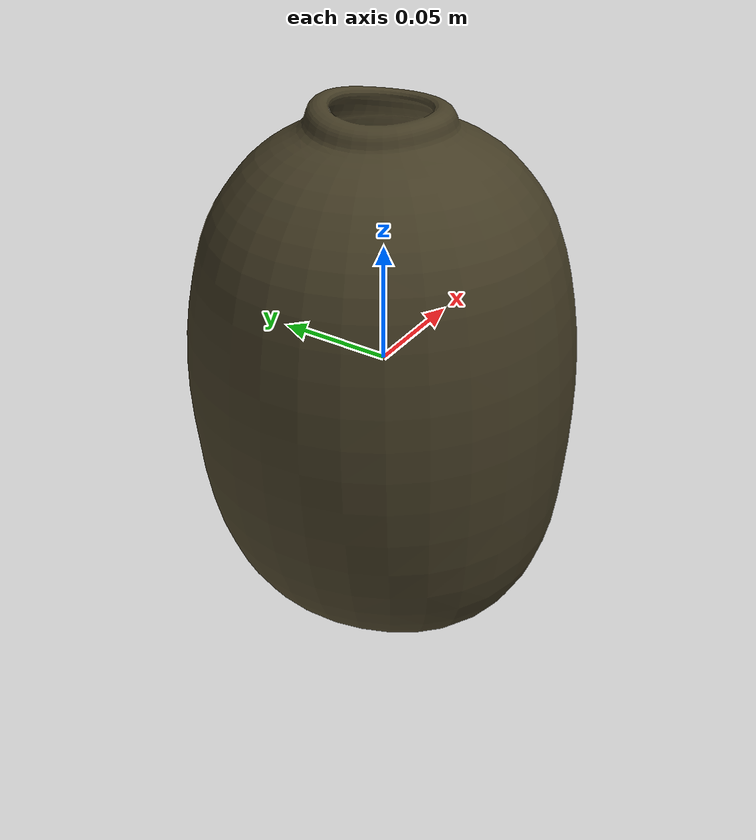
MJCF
<?xml version="1.0" ?>
<mujoco model="yellow_vase">
	<compiler meshdir="yellow_vase/meshes" texturedir="yellow_vase/textures" angle="radian" autolimits="true" balanceinertia="true" boundmass="0.000001" boundinertia="0.000001"/>
	<default>
		<default class="visual">
			<geom contype="0" conaffinity="0"/>
		</default>
		<default class="collision">
			<geom rgba="1.0 0.0 0.0 0.0"/>
		</default>
	</default>
	<asset>
		<mesh name="YellowVase" file="stl/YellowVase.stl" scale="1.0 1.0 1.0"/>
		<mesh name="YellowVase_001" file="stl/YellowVase_001.stl" scale="1.0 1.0 1.0"/>
		<mesh name="YellowVase_002" file="stl/YellowVase_002.stl" scale="1.0 1.0 1.0"/>
		<mesh name="YellowVase_003" file="stl/YellowVase_003.stl" scale="1.0 1.0 1.0"/>
		<mesh name="YellowVase_004" file="stl/YellowVase_004.stl" scale="1.0 1.0 1.0"/>
		<mesh name="YellowVase_005" file="stl/YellowVase_005.stl" scale="1.0 1.0 1.0"/>
		<mesh name="YellowVase_006" file="stl/YellowVase_006.stl" scale="1.0 1.0 1.0"/>
		<mesh name="YellowVase_007" file="stl/YellowVase_007.stl" scale="1.0 1.0 1.0"/>
		<mesh name="YellowVase_008" file="stl/YellowVase_008.stl" scale="1.0 1.0 1.0"/>
		<mesh name="YellowVase_009" file="stl/YellowVase_009.stl" scale="1.0 1.0 1.0"/>
		<mesh name="YellowVase_010" file="stl/YellowVase_010.stl" scale="1.0 1.0 1.0"/>
		<mesh name="YellowVase_011" file="stl/YellowVase_011.stl" scale="1.0 1.0 1.0"/>
		<mesh name="YellowVase_012" file="stl/YellowVase_012.stl" scale="1.0 1.0 1.0"/>
		<mesh name="YellowVase_013" file="stl/YellowVase_013.stl" scale="1.0 1.0 1.0"/>
		<mesh name="YellowVase_014" file="stl/YellowVase_014.stl" scale="1.0 1.0 1.0"/>
		<mesh name="YellowVase_015" file="stl/YellowVase_015.stl" scale="1.0 1.0 1.0"/>
		<mesh name="YellowVase_016" file="stl/YellowVase_016.stl" scale="1.0 1.0 1.0"/>
		<mesh name="YellowVase_017" file="stl/YellowVase_017.stl" scale="1.0 1.0 1.0"/>
		<mesh name="YellowVase_018" file="stl/YellowVase_018.stl" scale="1.0 1.0 1.0"/>
		<mesh name="YellowVase_019" file="stl/YellowVase_019.stl" scale="1.0 1.0 1.0"/>
		<mesh name="YellowVase_020" file="stl/YellowVase_020.stl" scale="1.0 1.0 1.0"/>
		<mesh name="YellowVase_021" file="stl/YellowVase_021.stl" scale="1.0 1.0 1.0"/>
		<mesh name="YellowVase_022" file="stl/YellowVase_022.stl" scale="1.0 1.0 1.0"/>
		<mesh name="YellowVase_023" file="stl/YellowVase_023.stl" scale="1.0 1.0 1.0"/>
		<mesh name="YellowVase_024" file="stl/YellowVase_024.stl" scale="1.0 1.0 1.0"/>
		<mesh name="YellowVase_025" file="stl/YellowVase_025.stl" scale="1.0 1.0 1.0"/>
		<mesh name="YellowVase_026" file="stl/YellowVase_026.stl" scale="1.0 1.0 1.0"/>
		<mesh name="YellowVase_027" file="stl/YellowVase_027.stl" scale="1.0 1.0 1.0"/>
		<mesh name="YellowVase_028" file="stl/YellowVase_028.stl" scale="1.0 1.0 1.0"/>
		<mesh name="YellowVase_029" file="stl/YellowVase_029.stl" scale="1.0 1.0 1.0"/>
		<mesh name="YellowVase_030" file="stl/YellowVase_030.stl" scale="1.0 1.0 1.0"/>
		<mesh name="YellowVase_031" file="stl/YellowVase_031.stl" scale="1.0 1.0 1.0"/>
		<mesh name="YellowVase_032" file="stl/YellowVase_032.stl" scale="1.0 1.0 1.0"/>
		<mesh name="YellowVase_033" file="stl/YellowVase_033.stl" scale="1.0 1.0 1.0"/>
		<mesh name="YellowVase_034" file="stl/YellowVase_034.stl" scale="1.0 1.0 1.0"/>
		<mesh name="YellowVase_035" file="stl/YellowVase_035.stl" scale="1.0 1.0 1.0"/>
		<mesh name="YellowVase_036" file="stl/YellowVase_036.stl" scale="1.0 1.0 1.0"/>
		<mesh name="YellowVase_037" file="stl/YellowVase_037.stl" scale="1.0 1.0 1.0"/>
		<mesh name="YellowVase_038" file="stl/YellowVase_038.stl" scale="1.0 1.0 1.0"/>
		<mesh name="YellowVase_039" file="stl/YellowVase_039.stl" scale="1.0 1.0 1.0"/>
		<mesh name="YellowVase_040" file="stl/YellowVase_040.stl" scale="1.0 1.0 1.0"/>
		<mesh name="YellowVase_041" file="stl/YellowVase_041.stl" scale="1.0 1.0 1.0"/>
		<mesh name="YellowVase_042" file="stl/YellowVase_042.stl" scale="1.0 1.0 1.0"/>
		<mesh name="YellowVase_043" file="stl/YellowVase_043.stl" scale="1.0 1.0 1.0"/>
		<mesh name="YellowVase_044" file="stl/YellowVase_044.stl" scale="1.0 1.0 1.0"/>
		<mesh name="YellowVase_045" file="stl/YellowVase_045.stl" scale="1.0 1.0 1.0"/>
		<mesh name="YellowVase_046" file="stl/YellowVase_046.stl" scale="1.0 1.0 1.0"/>
		<mesh name="YellowVase_047" file="stl/YellowVase_047.stl" scale="1.0 1.0 1.0"/>
		<mesh name="YellowVase_048" file="stl/YellowVase_048.stl" scale="1.0 1.0 1.0"/>
		<mesh name="YellowVase_049" file="stl/YellowVase_049.stl" scale="1.0 1.0 1.0"/>
		<mesh name="YellowVase_050" file="stl/YellowVase_050.stl" scale="1.0 1.0 1.0"/>
		<mesh name="YellowVase_051" file="stl/YellowVase_051.stl" scale="1.0 1.0 1.0"/>
		<mesh name="YellowVase_052" file="stl/YellowVase_052.stl" scale="1.0 1.0 1.0"/>
		<mesh name="YellowVase_053" file="stl/YellowVase_053.stl" scale="1.0 1.0 1.0"/>
		<mesh name="YellowVase_054" file="stl/YellowVase_054.stl" scale="1.0 1.0 1.0"/>
		<mesh name="YellowVase_055" file="stl/YellowVase_055.stl" scale="1.0 1.0 1.0"/>
		<mesh name="YellowVase_056" file="stl/YellowVase_056.stl" scale="1.0 1.0 1.0"/>
		<mesh name="YellowVase_057" file="stl/YellowVase_057.stl" scale="1.0 1.0 1.0"/>
		<mesh name="YellowVase_058" file="stl/YellowVase_058.stl" scale="1.0 1.0 1.0"/>
		<mesh name="YellowVase_059" file="stl/YellowVase_059.stl" scale="1.0 1.0 1.0"/>
		<mesh name="YellowVase_060" file="stl/YellowVase_060.stl" scale="1.0 1.0 1.0"/>
		<mesh name="YellowVase_061" file="stl/YellowVase_061.stl" scale="1.0 1.0 1.0"/>
		<mesh name="YellowVase_062" file="stl/YellowVase_062.stl" scale="1.0 1.0 1.0"/>
		<mesh name="YellowVase_063" file="stl/YellowVase_063.stl" scale="1.0 1.0 1.0"/>
		<mesh name="YellowVase_064" file="stl/YellowVase_064.stl" scale="1.0 1.0 1.0"/>
		<mesh name="YellowVase_065" file="stl/YellowVase_065.stl" scale="1.0 1.0 1.0"/>
		<mesh name="YellowVase_066" file="stl/YellowVase_066.stl" scale="1.0 1.0 1.0"/>
		<mesh name="YellowVase_067" file="stl/YellowVase_067.stl" scale="1.0 1.0 1.0"/>
		<mesh name="YellowVase_068" file="stl/YellowVase_068.stl" scale="1.0 1.0 1.0"/>
		<mesh name="YellowVase_069" file="stl/YellowVase_069.stl" scale="1.0 1.0 1.0"/>
		<mesh name="YellowVase_070" file="stl/YellowVase_070.stl" scale="1.0 1.0 1.0"/>
		<mesh name="YellowVase_071" file="stl/YellowVase_071.stl" scale="1.0 1.0 1.0"/>
		<mesh name="YellowVase_072" file="stl/YellowVase_072.stl" scale="1.0 1.0 1.0"/>
		<mesh name="YellowVase_073" file="stl/YellowVase_073.stl" scale="1.0 1.0 1.0"/>
		<mesh name="YellowVase_074" file="stl/YellowVase_074.stl" scale="1.0 1.0 1.0"/>
		<mesh name="YellowVase_075" file="stl/YellowVase_075.stl" scale="1.0 1.0 1.0"/>
		<mesh name="YellowVase_076" file="stl/YellowVase_076.stl" scale="1.0 1.0 1.0"/>
		<mesh name="YellowVase_077" file="stl/YellowVase_077.stl" scale="1.0 1.0 1.0"/>
		<mesh name="YellowVase_078" file="stl/YellowVase_078.stl" scale="1.0 1.0 1.0"/>
		<mesh name="YellowVase_079" file="stl/YellowVase_079.stl" scale="1.0 1.0 1.0"/>
		<mesh name="YellowVase_080" file="stl/YellowVase_080.stl" scale="1.0 1.0 1.0"/>
		<mesh name="YellowVase_081" file="stl/YellowVase_081.stl" scale="1.0 1.0 1.0"/>
		<mesh name="YellowVase_082" file="stl/YellowVase_082.stl" scale="1.0 1.0 1.0"/>
		<mesh name="YellowVase_083" file="stl/YellowVase_083.stl" scale="1.0 1.0 1.0"/>
		<mesh name="YellowVase_084" file="stl/YellowVase_084.stl" scale="1.0 1.0 1.0"/>
		<mesh name="YellowVase_085" file="stl/YellowVase_085.stl" scale="1.0 1.0 1.0"/>
		<mesh name="YellowVase_086" file="stl/YellowVase_086.stl" scale="1.0 1.0 1.0"/>
		<mesh name="YellowVase_087" file="stl/YellowVase_087.stl" scale="1.0 1.0 1.0"/>
		<mesh name="YellowVase_088" file="stl/YellowVase_088.stl" scale="1.0 1.0 1.0"/>
		<mesh name="YellowVase_089" file="stl/YellowVase_089.stl" scale="1.0 1.0 1.0"/>
		<mesh name="YellowVase_090" file="stl/YellowVase_090.stl" scale="1.0 1.0 1.0"/>
		<material name="M_YellowVase" rgba="0.26980000734329224 0.23919999599456787 0.1467999964952469 1.0" emission="0.0"/>
	</asset>
	<worldbody>
		<body name="yellow_vase" pos="0.0 0.0 0.0" quat="1.0 0.0 0.0 0.0">
			<inertial mass="1.7265357971191406" pos="0.0003741401305887848 -0.007447044365108013 -0.036509908735752106" quat="-0.6950965523719788 0.03205767646431923 0.7181177139282227 0.010957551188766956" diaginertia="0.006521994713693857 0.012012211605906487 0.012103862129151821"/>
			<geom name="YellowVase" type="mesh" pos="0.0 0.0 0.0" quat="1.0 0.0 0.0 0.0" mesh="YellowVase" material="M_YellowVase" class="visual"/>
			<geom name="YellowVase_001" type="mesh" pos="0.0 0.0 0.0" quat="1.0 0.0 0.0 0.0" mesh="YellowVase_001" class="collision"/>
			<geom name="YellowVase_002" type="mesh" pos="0.0 0.0 0.0" quat="1.0 0.0 0.0 0.0" mesh="YellowVase_002" class="collision"/>
			<geom name="YellowVase_003" type="mesh" pos="0.0 0.0 0.0" quat="1.0 0.0 0.0 0.0" mesh="YellowVase_003" class="collision"/>
			<geom name="YellowVase_004" type="mesh" pos="0.0 0.0 0.0" quat="1.0 0.0 0.0 0.0" mesh="YellowVase_004" class="collision"/>
			<geom name="YellowVase_005" type="mesh" pos="0.0 0.0 0.0" quat="1.0 0.0 0.0 0.0" mesh="YellowVase_005" class="collision"/>
			<geom name="YellowVase_006" type="mesh" pos="0.0 0.0 0.0" quat="1.0 0.0 0.0 0.0" mesh="YellowVase_006" class="collision"/>
			<geom name="YellowVase_007" type="mesh" pos="0.0 0.0 0.0" quat="1.0 0.0 0.0 0.0" mesh="YellowVase_007" class="collision"/>
			<geom name="YellowVase_008" type="mesh" pos="0.0 0.0 0.0" quat="1.0 0.0 0.0 0.0" mesh="YellowVase_008" class="collision"/>
			<geom name="YellowVase_009" type="mesh" pos="0.0 0.0 0.0" quat="1.0 0.0 0.0 0.0" mesh="YellowVase_009" class="collision"/>
			<geom name="YellowVase_010" type="mesh" pos="0.0 0.0 0.0" quat="1.0 0.0 0.0 0.0" mesh="YellowVase_010" class="collision"/>
			<geom name="YellowVase_011" type="mesh" pos="0.0 0.0 0.0" quat="1.0 0.0 0.0 0.0" mesh="YellowVase_011" class="collision"/>
			<geom name="YellowVase_012" type="mesh" pos="0.0 0.0 0.0" quat="1.0 0.0 0.0 0.0" mesh="YellowVase_012" class="collision"/>
			<geom name="YellowVase_013" type="mesh" pos="0.0 0.0 0.0" quat="1.0 0.0 0.0 0.0" mesh="YellowVase_013" class="collision"/>
			<geom name="YellowVase_014" type="mesh" pos="0.0 0.0 0.0" quat="1.0 0.0 0.0 0.0" mesh="YellowVase_014" class="collision"/>
			<geom name="YellowVase_015" type="mesh" pos="0.0 0.0 0.0" quat="1.0 0.0 0.0 0.0" mesh="YellowVase_015" class="collision"/>
			<geom name="YellowVase_016" type="mesh" pos="0.0 0.0 0.0" quat="1.0 0.0 0.0 0.0" mesh="YellowVase_016" class="collision"/>
			<geom name="YellowVase_017" type="mesh" pos="0.0 0.0 0.0" quat="1.0 0.0 0.0 0.0" mesh="YellowVase_017" class="collision"/>
			<geom name="YellowVase_018" type="mesh" pos="0.0 0.0 0.0" quat="1.0 0.0 0.0 0.0" mesh="YellowVase_018" class="collision"/>
			<geom name="YellowVase_019" type="mesh" pos="0.0 0.0 0.0" quat="1.0 0.0 0.0 0.0" mesh="YellowVase_019" class="collision"/>
			<geom name="YellowVase_020" type="mesh" pos="0.0 0.0 0.0" quat="1.0 0.0 0.0 0.0" mesh="YellowVase_020" class="collision"/>
			<geom name="YellowVase_021" type="mesh" pos="0.0 0.0 0.0" quat="1.0 0.0 0.0 0.0" mesh="YellowVase_021" class="collision"/>
			<geom name="YellowVase_022" type="mesh" pos="0.0 0.0 0.0" quat="1.0 0.0 0.0 0.0" mesh="YellowVase_022" class="collision"/>
			<geom name="YellowVase_023" type="mesh" pos="0.0 0.0 0.0" quat="1.0 0.0 0.0 0.0" mesh="YellowVase_023" class="collision"/>
			<geom name="YellowVase_024" type="mesh" pos="0.0 0.0 0.0" quat="1.0 0.0 0.0 0.0" mesh="YellowVase_024" class="collision"/>
			<geom name="YellowVase_025" type="mesh" pos="0.0 0.0 0.0" quat="1.0 0.0 0.0 0.0" mesh="YellowVase_025" class="collision"/>
			<geom name="YellowVase_026" type="mesh" pos="0.0 0.0 0.0" quat="1.0 0.0 0.0 0.0" mesh="YellowVase_026" class="collision"/>
			<geom name="YellowVase_027" type="mesh" pos="0.0 0.0 0.0" quat="1.0 0.0 0.0 0.0" mesh="YellowVase_027" class="collision"/>
			<geom name="YellowVase_028" type="mesh" pos="0.0 0.0 0.0" quat="1.0 0.0 0.0 0.0" mesh="YellowVase_028" class="collision"/>
			<geom name="YellowVase_029" type="mesh" pos="0.0 0.0 0.0" quat="1.0 0.0 0.0 0.0" mesh="YellowVase_029" class="collision"/>
			<geom name="YellowVase_030" type="mesh" pos="0.0 0.0 0.0" quat="1.0 0.0 0.0 0.0" mesh="YellowVase_030" class="collision"/>
			<geom name="YellowVase_031" type="mesh" pos="0.0 0.0 0.0" quat="1.0 0.0 0.0 0.0" mesh="YellowVase_031" class="collision"/>
			<geom name="YellowVase_032" type="mesh" pos="0.0 0.0 0.0" quat="1.0 0.0 0.0 0.0" mesh="YellowVase_032" class="collision"/>
			<geom name="YellowVase_033" type="mesh" pos="0.0 0.0 0.0" quat="1.0 0.0 0.0 0.0" mesh="YellowVase_033" class="collision"/>
			<geom name="YellowVase_034" type="mesh" pos="0.0 0.0 0.0" quat="1.0 0.0 0.0 0.0" mesh="YellowVase_034" class="collision"/>
			<geom name="YellowVase_035" type="mesh" pos="0.0 0.0 0.0" quat="1.0 0.0 0.0 0.0" mesh="YellowVase_035" class="collision"/>
			<geom name="YellowVase_036" type="mesh" pos="0.0 0.0 0.0" quat="1.0 0.0 0.0 0.0" mesh="YellowVase_036" class="collision"/>
			<geom name="YellowVase_037" type="mesh" pos="0.0 0.0 0.0" quat="1.0 0.0 0.0 0.0" mesh="YellowVase_037" class="collision"/>
			<geom name="YellowVase_038" type="mesh" pos="0.0 0.0 0.0" quat="1.0 0.0 0.0 0.0" mesh="YellowVase_038" class="collision"/>
			<geom name="YellowVase_039" type="mesh" pos="0.0 0.0 0.0" quat="1.0 0.0 0.0 0.0" mesh="YellowVase_039" class="collision"/>
			<geom name="YellowVase_040" type="mesh" pos="0.0 0.0 0.0" quat="1.0 0.0 0.0 0.0" mesh="YellowVase_040" class="collision"/>
			<geom name="YellowVase_041" type="mesh" pos="0.0 0.0 0.0" quat="1.0 0.0 0.0 0.0" mesh="YellowVase_041" class="collision"/>
			<geom name="YellowVase_042" type="mesh" pos="0.0 0.0 0.0" quat="1.0 0.0 0.0 0.0" mesh="YellowVase_042" class="collision"/>
			<geom name="YellowVase_043" type="mesh" pos="0.0 0.0 0.0" quat="1.0 0.0 0.0 0.0" mesh="YellowVase_043" class="collision"/>
			<geom name="YellowVase_044" type="mesh" pos="0.0 0.0 0.0" quat="1.0 0.0 0.0 0.0" mesh="YellowVase_044" class="collision"/>
			<geom name="YellowVase_045" type="mesh" pos="0.0 0.0 0.0" quat="1.0 0.0 0.0 0.0" mesh="YellowVase_045" class="collision"/>
			<geom name="YellowVase_046" type="mesh" pos="0.0 0.0 0.0" quat="1.0 0.0 0.0 0.0" mesh="YellowVase_046" class="collision"/>
			<geom name="YellowVase_047" type="mesh" pos="0.0 0.0 0.0" quat="1.0 0.0 0.0 0.0" mesh="YellowVase_047" class="collision"/>
			<geom name="YellowVase_048" type="mesh" pos="0.0 0.0 0.0" quat="1.0 0.0 0.0 0.0" mesh="YellowVase_048" class="collision"/>
			<geom name="YellowVase_049" type="mesh" pos="0.0 0.0 0.0" quat="1.0 0.0 0.0 0.0" mesh="YellowVase_049" class="collision"/>
			<geom name="YellowVase_050" type="mesh" pos="0.0 0.0 0.0" quat="1.0 0.0 0.0 0.0" mesh="YellowVase_050" class="collision"/>
			<geom name="YellowVase_051" type="mesh" pos="0.0 0.0 0.0" quat="1.0 0.0 0.0 0.0" mesh="YellowVase_051" class="collision"/>
			<geom name="YellowVase_052" type="mesh" pos="0.0 0.0 0.0" quat="1.0 0.0 0.0 0.0" mesh="YellowVase_052" class="collision"/>
			<geom name="YellowVase_053" type="mesh" pos="0.0 0.0 0.0" quat="1.0 0.0 0.0 0.0" mesh="YellowVase_053" class="collision"/>
			<geom name="YellowVase_054" type="mesh" pos="0.0 0.0 0.0" quat="1.0 0.0 0.0 0.0" mesh="YellowVase_054" class="collision"/>
			<geom name="YellowVase_055" type="mesh" pos="0.0 0.0 0.0" quat="1.0 0.0 0.0 0.0" mesh="YellowVase_055" class="collision"/>
			<geom name="YellowVase_056" type="mesh" pos="0.0 0.0 0.0" quat="1.0 0.0 0.0 0.0" mesh="YellowVase_056" class="collision"/>
			<geom name="YellowVase_057" type="mesh" pos="0.0 0.0 0.0" quat="1.0 0.0 0.0 0.0" mesh="YellowVase_057" class="collision"/>
			<geom name="YellowVase_058" type="mesh" pos="0.0 0.0 0.0" quat="1.0 0.0 0.0 0.0" mesh="YellowVase_058" class="collision"/>
			<geom name="YellowVase_059" type="mesh" pos="0.0 0.0 0.0" quat="1.0 0.0 0.0 0.0" mesh="YellowVase_059" class="collision"/>
			<geom name="YellowVase_060" type="mesh" pos="0.0 0.0 0.0" quat="1.0 0.0 0.0 0.0" mesh="YellowVase_060" class="collision"/>
			<geom name="YellowVase_061" type="mesh" pos="0.0 0.0 0.0" quat="1.0 0.0 0.0 0.0" mesh="YellowVase_061" class="collision"/>
			<geom name="YellowVase_062" type="mesh" pos="0.0 0.0 0.0" quat="1.0 0.0 0.0 0.0" mesh="YellowVase_062" class="collision"/>
			<geom name="YellowVase_063" type="mesh" pos="0.0 0.0 0.0" quat="1.0 0.0 0.0 0.0" mesh="YellowVase_063" class="collision"/>
			<geom name="YellowVase_064" type="mesh" pos="0.0 0.0 0.0" quat="1.0 0.0 0.0 0.0" mesh="YellowVase_064" class="collision"/>
			<geom name="YellowVase_065" type="mesh" pos="0.0 0.0 0.0" quat="1.0 0.0 0.0 0.0" mesh="YellowVase_065" class="collision"/>
			<geom name="YellowVase_066" type="mesh" pos="0.0 0.0 0.0" quat="1.0 0.0 0.0 0.0" mesh="YellowVase_066" class="collision"/>
			<geom name="YellowVase_067" type="mesh" pos="0.0 0.0 0.0" quat="1.0 0.0 0.0 0.0" mesh="YellowVase_067" class="collision"/>
			<geom name="YellowVase_068" type="mesh" pos="0.0 0.0 0.0" quat="1.0 0.0 0.0 0.0" mesh="YellowVase_068" class="collision"/>
			<geom name="YellowVase_069" type="mesh" pos="0.0 0.0 0.0" quat="1.0 0.0 0.0 0.0" mesh="YellowVase_069" class="collision"/>
			<geom name="YellowVase_070" type="mesh" pos="0.0 0.0 0.0" quat="1.0 0.0 0.0 0.0" mesh="YellowVase_070" class="collision"/>
			<geom name="YellowVase_071" type="mesh" pos="0.0 0.0 0.0" quat="1.0 0.0 0.0 0.0" mesh="YellowVase_071" class="collision"/>
			<geom name="YellowVase_072" type="mesh" pos="0.0 0.0 0.0" quat="1.0 0.0 0.0 0.0" mesh="YellowVase_072" class="collision"/>
			<geom name="YellowVase_073" type="mesh" pos="0.0 0.0 0.0" quat="1.0 0.0 0.0 0.0" mesh="YellowVase_073" class="collision"/>
			<geom name="YellowVase_074" type="mesh" pos="0.0 0.0 0.0" quat="1.0 0.0 0.0 0.0" mesh="YellowVase_074" class="collision"/>
			<geom name="YellowVase_075" type="mesh" pos="0.0 0.0 0.0" quat="1.0 0.0 0.0 0.0" mesh="YellowVase_075" class="collision"/>
			<geom name="YellowVase_076" type="mesh" pos="0.0 0.0 0.0" quat="1.0 0.0 0.0 0.0" mesh="YellowVase_076" class="collision"/>
			<geom name="YellowVase_077" type="mesh" pos="0.0 0.0 0.0" quat="1.0 0.0 0.0 0.0" mesh="YellowVase_077" class="collision"/>
			<geom name="YellowVase_078" type="mesh" pos="0.0 0.0 0.0" quat="1.0 0.0 0.0 0.0" mesh="YellowVase_078" class="collision"/>
			<geom name="YellowVase_079" type="mesh" pos="0.0 0.0 0.0" quat="1.0 0.0 0.0 0.0" mesh="YellowVase_079" class="collision"/>
			<geom name="YellowVase_080" type="mesh" pos="0.0 0.0 0.0" quat="1.0 0.0 0.0 0.0" mesh="YellowVase_080" class="collision"/>
			<geom name="YellowVase_081" type="mesh" pos="0.0 0.0 0.0" quat="1.0 0.0 0.0 0.0" mesh="YellowVase_081" class="collision"/>
			<geom name="YellowVase_082" type="mesh" pos="0.0 0.0 0.0" quat="1.0 0.0 0.0 0.0" mesh="YellowVase_082" class="collision"/>
			<geom name="YellowVase_083" type="mesh" pos="0.0 0.0 0.0" quat="1.0 0.0 0.0 0.0" mesh="YellowVase_083" class="collision"/>
			<geom name="YellowVase_084" type="mesh" pos="0.0 0.0 0.0" quat="1.0 0.0 0.0 0.0" mesh="YellowVase_084" class="collision"/>
			<geom name="YellowVase_085" type="mesh" pos="0.0 0.0 0.0" quat="1.0 0.0 0.0 0.0" mesh="YellowVase_085" class="collision"/>
			<geom name="YellowVase_086" type="mesh" pos="0.0 0.0 0.0" quat="1.0 0.0 0.0 0.0" mesh="YellowVase_086" class="collision"/>
			<geom name="YellowVase_087" type="mesh" pos="0.0 0.0 0.0" quat="1.0 0.0 0.0 0.0" mesh="YellowVase_087" class="collision"/>
			<geom name="YellowVase_088" type="mesh" pos="0.0 0.0 0.0" quat="1.0 0.0 0.0 0.0" mesh="YellowVase_088" class="collision"/>
			<geom name="YellowVase_089" type="mesh" pos="0.0 0.0 0.0" quat="1.0 0.0 0.0 0.0" mesh="YellowVase_089" class="collision"/>
			<geom name="YellowVase_090" type="mesh" pos="0.0 0.0 0.0" quat="1.0 0.0 0.0 0.0" mesh="YellowVase_090" class="collision"/>
		</body>
	</worldbody>
	<equality/>
</mujoco>
